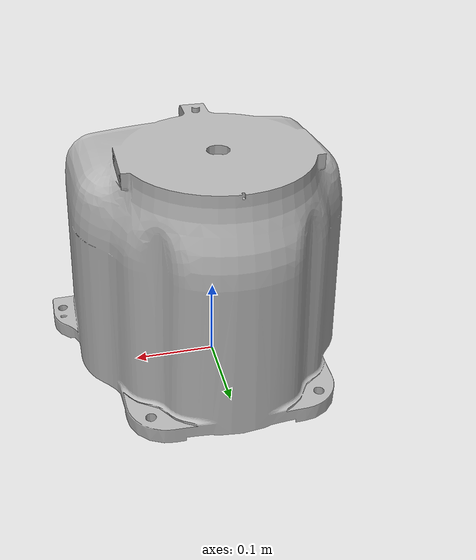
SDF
<sdf version='1.6'>
  <model name='qin'>
    <static>true</static>
    <link name='base_link'>
      <pose frame=''>0 0 0 0 -0 0</pose>
      <inertial>
        <pose frame=''>0.026044 -0.001815 0.006198 0 -0 0</pose>
        <mass>0.33203</mass>
        <inertia>
          <ixx>0.0002513</ixx>
          <ixy>-1.5475e-06</ixy>
          <ixz>-6.3224e-07</ixz>
          <iyy>0.0023575</iyy>
          <iyz>6.2199e-07</iyz>
          <izz>0.0025989</izz>
        </inertia>
      </inertial>
      <collision name='base_link_collision'>
        <pose frame=''>0 0 0 0 -0 0</pose>
        <geometry>
          <mesh>
            <scale>1 1 1</scale>
            <uri>model://qin/meshes/base_link.STL</uri>
          </mesh>
        </geometry>
      </collision>
      <visual name='base_link_visual'>
        <pose frame=''>0 0 0 0 -0 0</pose>
        <geometry>
          <mesh>
            <scale>1 1 1</scale>
            <uri>model://qin/meshes/base_link.STL</uri>
          </mesh>
        </geometry>
      </visual>
    </link>
  </model>
</sdf>
